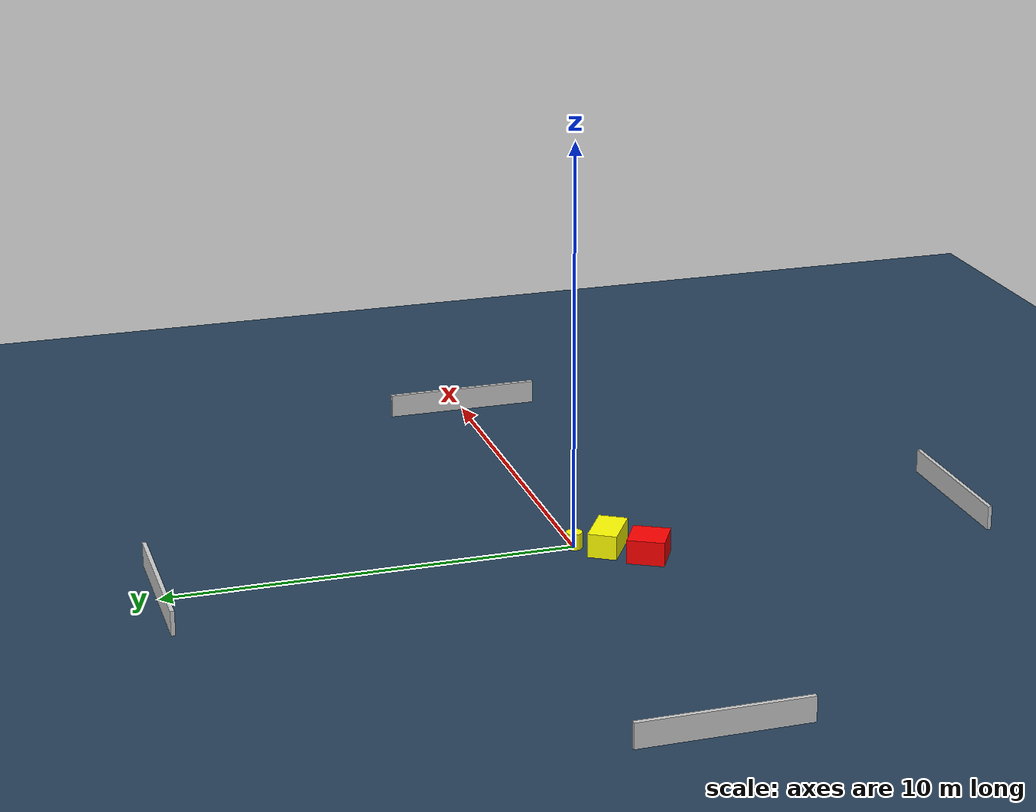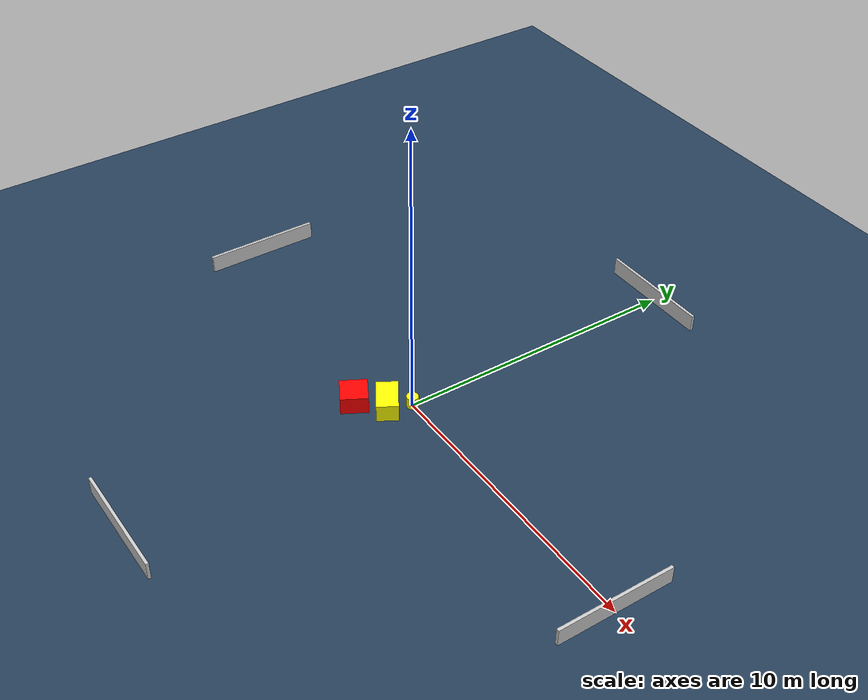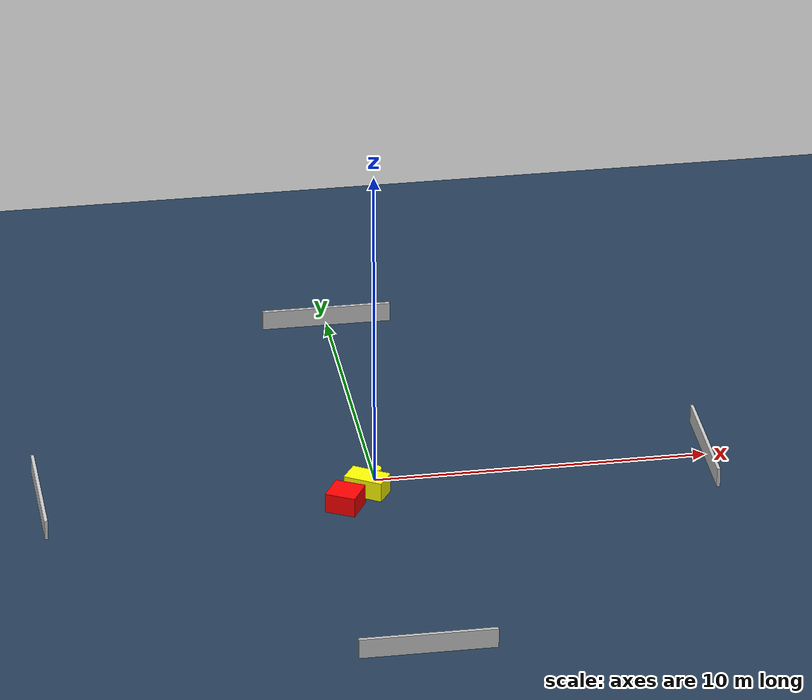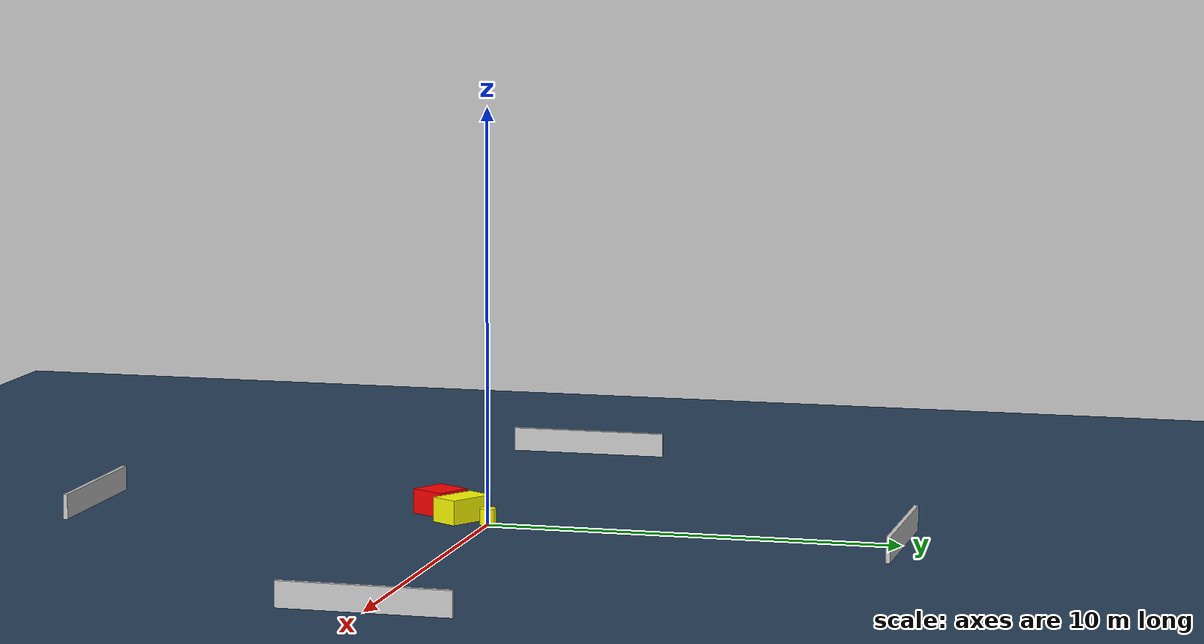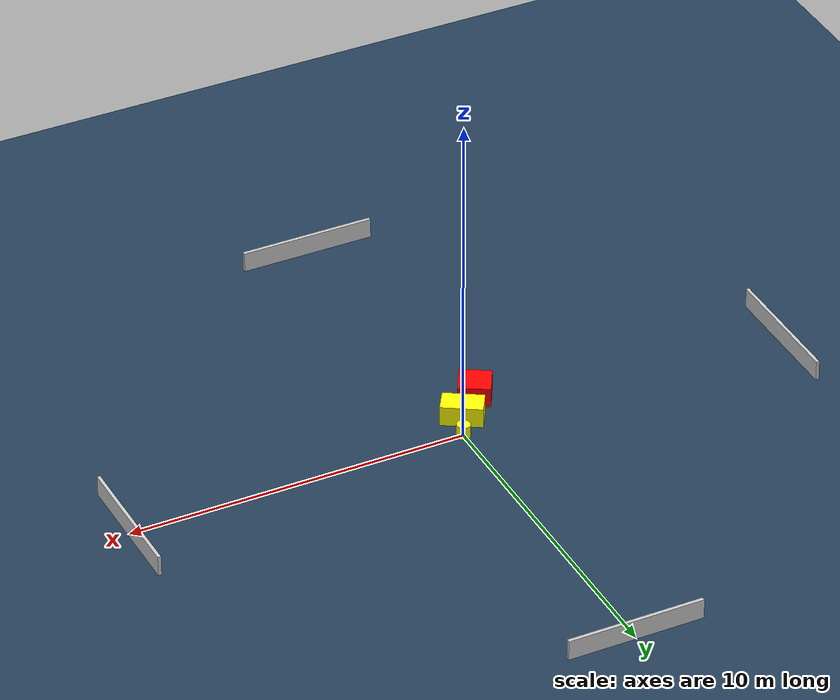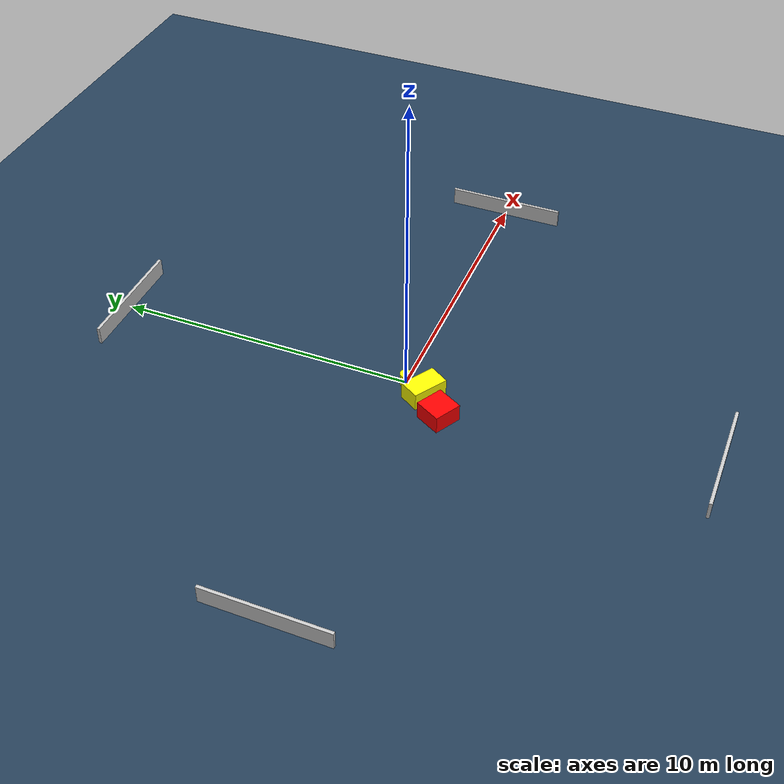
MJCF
<?xml version="1.0" ?>
<mujoco model="generated_environment">
  <option timestep="0.01" integrator="RK4" cone="elliptic"/>
  <default>
    <geom density="1"/>
  </default>
  <asset>
    <texture builtin="gradient" height="3072" name="skybox" rgb1="0.3 0.5 0.7" rgb2="0 0 0" type="skybox" width="512"/>
    <texture builtin="checker" height="300" name="groundplane" rgb1="0.2 0.3 0.4" rgb2="0.1 0.2 0.3" type="2d" width="300"/>
    <material name="groundplane" reflectance="0.2" texrepeat="5 5" texture="groundplane"/>
  </asset>
  <worldbody>
    <light dir="0 0 -1" directional="true" pos="0 0 1.5"/>
    <geom condim="3" friction="0.5 0.005 0.001" material="groundplane" name="floor" pos="0 0 0" size="0 0 0.05" type="plane"/>
    <body name="walls">
      <geom name="wall_1" condim="4" pos="-10.0 0.0 0.3" rgba="0.800000011920929 0.800000011920929 0.800000011920929 1.0" size="0.05 2.0 0.3" type="box"/>
      <geom name="wall_2" condim="4" pos="10.0 0.0 0.3" rgba="0.800000011920929 0.800000011920929 0.800000011920929 1.0" size="0.05 2.0 0.3" type="box"/>
      <geom name="wall_3" condim="4" pos="0.0 -10.0 0.3" rgba="0.800000011920929 0.800000011920929 0.800000011920929 1.0" size="2.0 0.05 0.3" type="box"/>
      <geom name="wall_4" condim="4" pos="0.0 10.0 0.3" rgba="0.800000011920929 0.800000011920929 0.800000011920929 1.0" size="2.0 0.05 0.3" type="box"/>
    </body>
    <body name="robot">
      <joint name="joint_x" type="slide" pos="0 0 0" axis="1 0 0"/>
      <joint name="joint_y" type="slide" pos="0 0 0" axis="0 1 0"/>
      <geom name="robot" type="cylinder" pos="0.0 0.0 0.2" size="0.2 0.2 0.0" mass="5.0" friction="1.0 0.005 0.0001" condim="4" rgba="1.0 1.0 0.0 1.0"/>
    </body>
    <body name="obstacle_1_movable">
      <geom name="obstacle_1_movable" condim="4" pos="-0.3377828090757973 -0.7318289489176693 0.3" euler="0 0 148.2051824361211" friction="0.0 0.005 0.001" rgba="1.0 1.0 0.0 1.0" size="0.6014042855200014 0.35709204134408123 0.3" type="box" mass="0.1"/>
      <joint type="free"/>
    </body>
    <body name="obstacle_2_static">
      <geom name="obstacle_2_static" condim="4" pos="-1.1066405411303146 -1.50063358563548 0.3" euler="0 0 61.069285783384075" friction="0.0 0.005 0.001" rgba="1.0 0.0 0.0 1.0" size="0.4558588415646943 0.46506428948390716 0.3" type="box"/>
    </body>
  </worldbody>
  <actuator>
    <motor name="actuator_x" joint="joint_x" gear="1" ctrlrange="-1 1"/>
    <motor name="actuator_y" joint="joint_y" gear="1" ctrlrange="-1 1"/>
  </actuator>
</mujoco>
